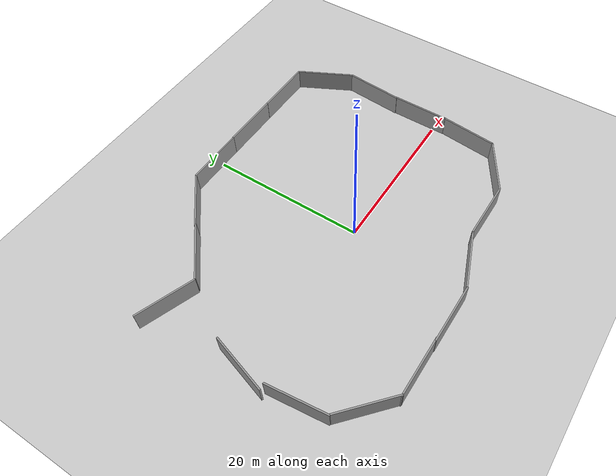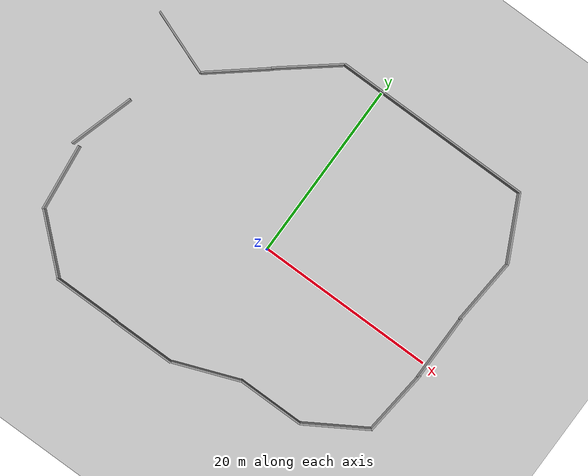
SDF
<sdf version="1.7">
 <world name="default">
  <light name="sun" type="directional">
   <pose>0 0 10 0 -0 0</pose>
   <diffuse>0.8 0.8 0.8 1</diffuse>
   <specular>0.2 0.2 0.2 1</specular>
   <attenuation>
    <range>1000</range>
    <constant>0.9</constant>
    <linear>0.01</linear>
    <quadratic>0.001</quadratic>
   </attenuation>
   <direction>-0.5 0.1 -0.9</direction>
   <spot><inner_angle>0</inner_angle><outer_angle>0</outer_angle><falloff>0</falloff></spot>
  </light>
  <model name="ground_plane">
   <static>1</static>
   <link name="link">
    <collision name="collision">
     <geometry><plane><normal>0 0 1</normal><size>100 100</size></plane></geometry>
     <surface><friction><ode><mu>100</mu><mu2>50</mu2></ode></friction></surface>
    </collision>
    <visual name="visual">
     <cast_shadows>0</cast_shadows>
     <geometry><plane><normal>0 0 1</normal><size>100 100</size></plane></geometry>
     <material>
      <script><uri>file://media/materials/scripts/gazebo.material</uri><name>Gazebo/Grey</name></script>
     </material>
    </visual>
   </link>
  </model>
  <gravity>0 0 -9.8</gravity>
  <magnetic_field>6e-06 2.3e-05 -4.2e-05</magnetic_field>
  <atmosphere type="adiabatic"/>
  <physics type="ode">
   <max_step_size>0.001</max_step_size>
   <real_time_factor>1</real_time_factor>
   <real_time_update_rate>1000</real_time_update_rate>
   <ode><solver><friction_model>cone_model</friction_model></solver></ode>
  </physics>
  <scene><ambient>0.4 0.4 0.4 1</ambient><background>0.7 0.7 0.7 1</background><shadows>1</shadows></scene>
  <spherical_coordinates>
   <surface_model>EARTH_WGS84</surface_model>
   <latitude_deg>0</latitude_deg>
   <longitude_deg>0</longitude_deg>
   <elevation>0</elevation>
   <heading_deg>0</heading_deg>
  </spherical_coordinates>
  <model name="grey_wall">
   <static>1</static>
   <link name="link">
    <pose>0 0 1.4 0 -0 0</pose>
    <collision name="collision"><geometry><box><size>7.5 0.2 2.8</size></box></geometry></collision>
    <visual name="visual">
     <cast_shadows>0</cast_shadows>
     <geometry><box><size>7.5 0.2 2.8</size></box></geometry>
     <material>
      <script>
       <uri>model://grey_wall/materials/scripts</uri>
       <uri>model://grey_wall/materials/textures</uri>
       <name>vrc/grey_wall</name>
      </script>
     </material>
    </visual>
   </link>
   <pose>-1.09206 20.0592 0 0 -0 0</pose>
  </model>
  <model name="grey_wall_0">
   <static>1</static>
   <link name="link">
    <pose>0 0 1.4 0 -0 0</pose>
    <collision name="collision"><geometry><box><size>7.5 0.2 2.8</size></box></geometry></collision>
    <visual name="visual">
     <cast_shadows>0</cast_shadows>
     <geometry><box><size>7.5 0.2 2.8</size></box></geometry>
     <material>
      <script>
       <uri>model://grey_wall/materials/scripts</uri>
       <uri>model://grey_wall/materials/textures</uri>
       <name>vrc/grey_wall</name>
      </script>
     </material>
    </visual>
   </link>
   <pose>6.30258 20.0607 0 0 -0 0</pose>
  </model>
  <model name="grey_wall_1">
   <static>1</static>
   <link name="link">
    <pose>0 0 1.4 0 -0 0</pose>
    <collision name="collision"><geometry><box><size>7.5 0.2 2.8</size></box></geometry></collision>
    <visual name="visual">
     <cast_shadows>0</cast_shadows>
     <geometry><box><size>7.5 0.2 2.8</size></box></geometry>
     <material>
      <script>
       <uri>model://grey_wall/materials/scripts</uri>
       <uri>model://grey_wall/materials/textures</uri>
       <name>vrc/grey_wall</name>
      </script>
     </material>
    </visual>
   </link>
   <pose>13.7474 20.0506 0 0 -0 0</pose>
  </model>
  <model name="grey_wall_2">
   <static>1</static>
   <link name="link">
    <pose>0 0 1.4 0 -0 0</pose>
    <collision name="collision"><geometry><box><size>7.5 0.2 2.8</size></box></geometry></collision>
    <visual name="visual">
     <cast_shadows>0</cast_shadows>
     <geometry><box><size>7.5 0.2 2.8</size></box></geometry>
     <material>
      <script>
       <uri>model://grey_wall/materials/scripts</uri>
       <uri>model://grey_wall/materials/textures</uri>
       <name>vrc/grey_wall</name>
      </script>
     </material>
    </visual>
   </link>
   <pose>19.1693 16.7061 0 0 0 -1.10288</pose>
  </model>
  <model name="grey_wall_3">
   <static>1</static>
   <link name="link">
    <pose>0 0 1.4 0 -0 0</pose>
    <collision name="collision"><geometry><box><size>7.5 0.2 2.8</size></box></geometry></collision>
    <visual name="visual">
     <cast_shadows>0</cast_shadows>
     <geometry><box><size>7.5 0.2 2.8</size></box></geometry>
     <material>
      <script>
       <uri>model://grey_wall/materials/scripts</uri>
       <uri>model://grey_wall/materials/textures</uri>
       <name>vrc/grey_wall</name>
      </script>
     </material>
    </visual>
   </link>
   <pose>19.9937 -4.9034 0 0 0 -1.6726</pose>
  </model>
  <model name="grey_wall_4">
   <static>1</static>
   <link name="link">
    <pose>0 0 1.4 0 -0 0</pose>
    <collision name="collision"><geometry><box><size>7.5 0.2 2.8</size></box></geometry></collision>
    <visual name="visual">
     <cast_shadows>0</cast_shadows>
     <geometry><box><size>7.5 0.2 2.8</size></box></geometry>
     <material>
      <script>
       <uri>model://grey_wall/materials/scripts</uri>
       <uri>model://grey_wall/materials/textures</uri>
       <name>vrc/grey_wall</name>
      </script>
     </material>
    </visual>
   </link>
   <pose>20.3234 2.2979 0 0 0 -1.57405</pose>
  </model>
  <model name="grey_wall_5">
   <static>1</static>
   <link name="link">
    <pose>0 0 1.4 0 -0 0</pose>
    <collision name="collision"><geometry><box><size>7.5 0.2 2.8</size></box></geometry></collision>
    <visual name="visual">
     <cast_shadows>0</cast_shadows>
     <geometry><box><size>7.5 0.2 2.8</size></box></geometry>
     <material>
      <script>
       <uri>model://grey_wall/materials/scripts</uri>
       <uri>model://grey_wall/materials/textures</uri>
       <name>vrc/grey_wall</name>
      </script>
     </material>
    </visual>
   </link>
   <pose>16.4974 -10.5105 0 0 -0 0.552868</pose>
  </model>
  <model name="grey_wall_6">
   <static>1</static>
   <link name="link">
    <pose>0 0 1.4 0 -0 0</pose>
    <collision name="collision"><geometry><box><size>7.5 0.2 2.8</size></box></geometry></collision>
    <visual name="visual">
     <cast_shadows>0</cast_shadows>
     <geometry><box><size>7.5 0.2 2.8</size></box></geometry>
     <material>
      <script>
       <uri>model://grey_wall/materials/scripts</uri>
       <uri>model://grey_wall/materials/textures</uri>
       <name>vrc/grey_wall</name>
      </script>
     </material>
    </visual>
   </link>
   <pose>20.5654 9.6079 0 0 0 -1.64863</pose>
  </model>
  <model name="grey_wall_7">
   <static>1</static>
   <link name="link">
    <pose>0 0 1.4 0 -0 0</pose>
    <collision name="collision"><geometry><box><size>7.5 0.2 2.8</size></box></geometry></collision>
    <visual name="visual">
     <cast_shadows>0</cast_shadows>
     <geometry><box><size>7.5 0.2 2.8</size></box></geometry>
     <material>
      <script>
       <uri>model://grey_wall/materials/scripts</uri>
       <uri>model://grey_wall/materials/textures</uri>
       <name>vrc/grey_wall</name>
      </script>
     </material>
    </visual>
   </link>
   <pose>-11.9015 -15.1974 0 0 -0 0</pose>
  </model>
  <model name="grey_wall_8">
   <static>1</static>
   <link name="link">
    <pose>0 0 1.4 0 -0 0</pose>
    <collision name="collision"><geometry><box><size>7.5 0.2 2.8</size></box></geometry></collision>
    <visual name="visual">
     <cast_shadows>0</cast_shadows>
     <geometry><box><size>7.5 0.2 2.8</size></box></geometry>
     <material>
      <script>
       <uri>model://grey_wall/materials/scripts</uri>
       <uri>model://grey_wall/materials/textures</uri>
       <name>vrc/grey_wall</name>
      </script>
     </material>
    </visual>
   </link>
   <pose>-4.83261 -15.2532 0 0 -0 0</pose>
  </model>
  <model name="grey_wall_9">
   <static>1</static>
   <link name="link">
    <pose>0 0 1.4 0 -0 0</pose>
    <collision name="collision"><geometry><box><size>7.5 0.2 2.8</size></box></geometry></collision>
    <visual name="visual">
     <cast_shadows>0</cast_shadows>
     <geometry><box><size>7.5 0.2 2.8</size></box></geometry>
     <material>
      <script>
       <uri>model://grey_wall/materials/scripts</uri>
       <uri>model://grey_wall/materials/textures</uri>
       <name>vrc/grey_wall</name>
      </script>
     </material>
    </visual>
   </link>
   <pose>2.4148 -13.8309 0 0 -0 0.366253</pose>
  </model>
  <model name="grey_wall_10">
   <static>1</static>
   <link name="link">
    <pose>0 0 1.4 0 -0 0</pose>
    <collision name="collision"><geometry><box><size>7.5 0.2 2.8</size></box></geometry></collision>
    <visual name="visual">
     <cast_shadows>0</cast_shadows>
     <geometry><box><size>7.5 0.2 2.8</size></box></geometry>
     <material>
      <script>
       <uri>model://grey_wall/materials/scripts</uri>
       <uri>model://grey_wall/materials/textures</uri>
       <name>vrc/grey_wall</name>
      </script>
     </material>
    </visual>
   </link>
   <pose>9.56874 -12.4779 0 0 -0 0</pose>
  </model>
  <model name="grey_wall_11">
   <static>1</static>
   <link name="link">
    <pose>0 0 1.4 0 -0 0</pose>
    <collision name="collision"><geometry><box><size>7.5 0.2 2.8</size></box></geometry></collision>
    <visual name="visual">
     <cast_shadows>0</cast_shadows>
     <geometry><box><size>7.5 0.2 2.8</size></box></geometry>
     <material>
      <script>
       <uri>model://grey_wall/materials/scripts</uri>
       <uri>model://grey_wall/materials/textures</uri>
       <name>vrc/grey_wall</name>
      </script>
     </material>
    </visual>
   </link>
   <pose>-18.1814 -12.7582 0 0 0 -0.734407</pose>
  </model>
  <model name="grey_wall_12">
   <static>1</static>
   <link name="link">
    <pose>0 0 1.4 0 -0 0</pose>
    <collision name="collision"><geometry><box><size>7.5 0.2 2.8</size></box></geometry></collision>
    <visual name="visual">
     <cast_shadows>0</cast_shadows>
     <geometry><box><size>7.5 0.2 2.8</size></box></geometry>
     <material>
      <script>
       <uri>model://grey_wall/materials/scripts</uri>
       <uri>model://grey_wall/materials/textures</uri>
       <name>vrc/grey_wall</name>
      </script>
     </material>
    </visual>
   </link>
   <pose>-21.4523 -6.59853 0 0 0 -1.4598</pose>
  </model>
  <model name="grey_wall_13">
   <static>1</static>
   <link name="link">
    <pose>0 0 1.4 0 -0 0</pose>
    <collision name="collision"><geometry><box><size>7.5 0.2 2.8</size></box></geometry></collision>
    <visual name="visual">
     <cast_shadows>0</cast_shadows>
     <geometry><box><size>7.5 0.2 2.8</size></box></geometry>
     <material>
      <script>
       <uri>model://grey_wall/materials/scripts</uri>
       <uri>model://grey_wall/materials/textures</uri>
       <name>vrc/grey_wall</name>
      </script>
     </material>
    </visual>
   </link>
   <pose>-21.5356 0.523983 0 0 -0 1.28015</pose>
  </model>
  <model name="grey_wall_14">
   <static>1</static>
   <link name="link">
    <pose>0 0 1.4 0 -0 0</pose>
    <collision name="collision"><geometry><box><size>7.5 0.2 2.8</size></box></geometry></collision>
    <visual name="visual">
     <cast_shadows>0</cast_shadows>
     <geometry><box><size>7.5 0.2 2.8</size></box></geometry>
     <material>
      <script>
       <uri>model://grey_wall/materials/scripts</uri>
       <uri>model://grey_wall/materials/textures</uri>
       <name>vrc/grey_wall</name>
      </script>
     </material>
    </visual>
   </link>
   <pose>-7.78655 17.6097 0 0 -0 0.680868</pose>
  </model>
  <model name="grey_wall_15">
   <static>1</static>
   <link name="link">
    <pose>0 0 1.4 0 -0 0</pose>
    <collision name="collision"><geometry><box><size>7.5 0.2 2.8</size></box></geometry></collision>
    <visual name="visual">
     <cast_shadows>0</cast_shadows>
     <geometry><box><size>7.5 0.2 2.8</size></box></geometry>
     <material>
      <script>
       <uri>model://grey_wall/materials/scripts</uri>
       <uri>model://grey_wall/materials/textures</uri>
       <name>vrc/grey_wall</name>
      </script>
     </material>
    </visual>
   </link>
   <pose>-13.369 12.9834 0 0 -0 0.68949</pose>
  </model>
  <model name="grey_wall_16">
   <static>1</static>
   <link name="link">
    <pose>0 0 1.4 0 -0 0</pose>
    <collision name="collision"><geometry><box><size>7.5 0.2 2.8</size></box></geometry></collision>
    <visual name="visual">
     <cast_shadows>0</cast_shadows>
     <geometry><box><size>7.5 0.2 2.8</size></box></geometry>
     <material>
      <script>
       <uri>model://grey_wall/materials/scripts</uri>
       <uri>model://grey_wall/materials/textures</uri>
       <name>vrc/grey_wall</name>
      </script>
     </material>
    </visual>
   </link>
   <pose>-19.8044 11.8509 0 0 0 -0.354647</pose>
  </model>
 </world>
</sdf>
